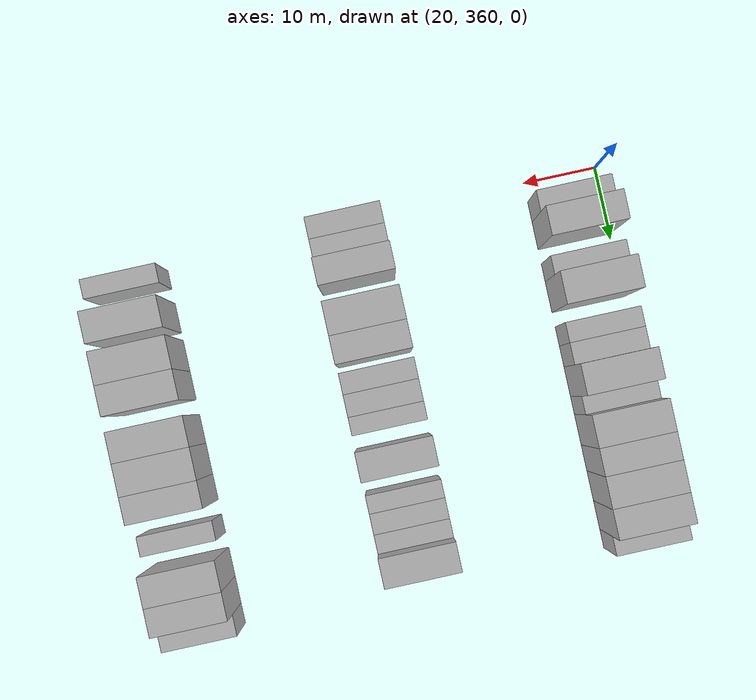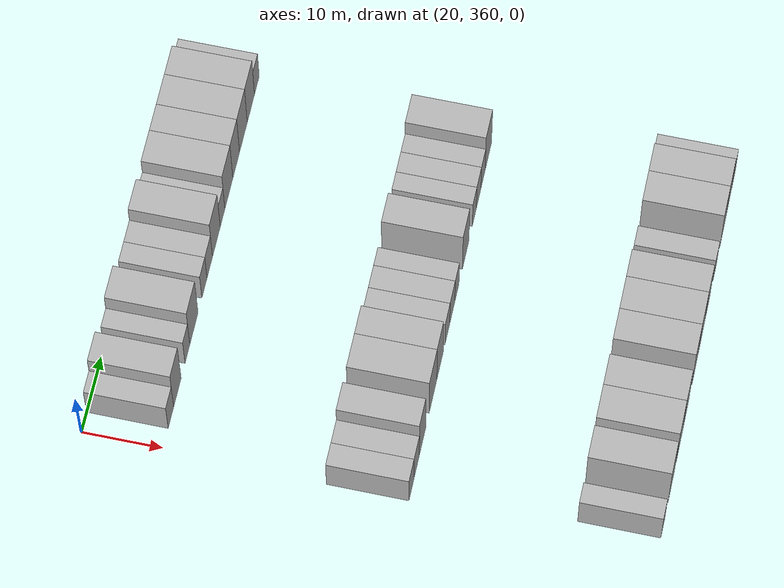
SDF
<sdf version="1.6">
 <world name="default">
  <model name="building_209">
   <static>1</static>
   <pose>25.0000 364.0483 0 0.000000 0.000000 0.000000</pose>
   <link name="link">
    <pose>0 0 3.00 0 0 0</pose>
    <collision name="collision"><geometry><box><size>10.0000 2.8384 6.0000</size></box></geometry></collision>
    <visual name="visual">
     <cast_shadows>0</cast_shadows>
     <geometry><box><size>10.0000 2.8384 6.0000</size></box></geometry>
     <material>
      <script>
       <uri>model://HANNAS_wall/materials/scripts</uri>
       <uri>model://HANNAS_wall/materials/textures</uri>
       <name>vrc/HANNAS_wall</name>
      </script>
     </material>
    </visual>
   </link>
  </model>
  <model name="building_210">
   <static>1</static>
   <pose>25.0000 367.3713 0 0.000000 0.000000 0.000000</pose>
   <link name="link">
    <pose>0 0 4.50 0 0 0</pose>
    <collision name="collision"><geometry><box><size>10.0000 3.8077 9.0000</size></box></geometry></collision>
    <visual name="visual">
     <cast_shadows>0</cast_shadows>
     <geometry><box><size>10.0000 3.8077 9.0000</size></box></geometry>
     <material>
      <script>
       <uri>model://HANNAS_wall/materials/scripts</uri>
       <uri>model://HANNAS_wall/materials/textures</uri>
       <name>vrc/HANNAS_wall</name>
      </script>
     </material>
    </visual>
   </link>
  </model>
  <model name="building_211">
   <static>1</static>
   <pose>25.0000 372.5318 0 0.000000 0.000000 0.000000</pose>
   <link name="link">
    <pose>0 0 3.00 0 0 0</pose>
    <collision name="collision"><geometry><box><size>10.0000 2.5133 6.0000</size></box></geometry></collision>
    <visual name="visual">
     <cast_shadows>0</cast_shadows>
     <geometry><box><size>10.0000 2.5133 6.0000</size></box></geometry>
     <material>
      <script>
       <uri>model://HANNAS_wall/materials/scripts</uri>
       <uri>model://HANNAS_wall/materials/textures</uri>
       <name>vrc/HANNAS_wall</name>
      </script>
     </material>
    </visual>
   </link>
  </model>
  <model name="building_212">
   <static>1</static>
   <pose>25.0000 375.9277 0 0.000000 0.000000 0.000000</pose>
   <link name="link">
    <pose>0 0 4.50 0 0 0</pose>
    <collision name="collision"><geometry><box><size>10.0000 4.2786 9.0000</size></box></geometry></collision>
    <visual name="visual">
     <cast_shadows>0</cast_shadows>
     <geometry><box><size>10.0000 4.2786 9.0000</size></box></geometry>
     <material>
      <script>
       <uri>model://HANNAS_wall/materials/scripts</uri>
       <uri>model://HANNAS_wall/materials/textures</uri>
       <name>vrc/HANNAS_wall</name>
      </script>
     </material>
    </visual>
   </link>
  </model>
  <model name="building_213">
   <static>1</static>
   <pose>25.0000 381.4130 0 0.000000 0.000000 0.000000</pose>
   <link name="link">
    <pose>0 0 3.00 0 0 0</pose>
    <collision name="collision"><geometry><box><size>10.0000 2.6919 6.0000</size></box></geometry></collision>
    <visual name="visual">
     <cast_shadows>0</cast_shadows>
     <geometry><box><size>10.0000 2.6919 6.0000</size></box></geometry>
     <material>
      <script>
       <uri>model://HANNAS_wall/materials/scripts</uri>
       <uri>model://HANNAS_wall/materials/textures</uri>
       <name>vrc/HANNAS_wall</name>
      </script>
     </material>
    </visual>
   </link>
  </model>
  <model name="building_214">
   <static>1</static>
   <pose>25.0000 384.2141 0 0.000000 0.000000 0.000000</pose>
   <link name="link">
    <pose>0 0 3.00 0 0 0</pose>
    <collision name="collision"><geometry><box><size>10.0000 2.9104 6.0000</size></box></geometry></collision>
    <visual name="visual">
     <cast_shadows>0</cast_shadows>
     <geometry><box><size>10.0000 2.9104 6.0000</size></box></geometry>
     <material>
      <script>
       <uri>model://HANNAS_wall/materials/scripts</uri>
       <uri>model://HANNAS_wall/materials/textures</uri>
       <name>vrc/HANNAS_wall</name>
      </script>
     </material>
    </visual>
   </link>
  </model>
  <model name="building_215">
   <static>1</static>
   <pose>25.0000 387.7266 0 0.000000 0.000000 0.000000</pose>
   <link name="link">
    <pose>0 0 4.50 0 0 0</pose>
    <collision name="collision"><geometry><box><size>10.0000 4.1146 9.0000</size></box></geometry></collision>
    <visual name="visual">
     <cast_shadows>0</cast_shadows>
     <geometry><box><size>10.0000 4.1146 9.0000</size></box></geometry>
     <material>
      <script>
       <uri>model://HANNAS_wall/materials/scripts</uri>
       <uri>model://HANNAS_wall/materials/textures</uri>
       <name>vrc/HANNAS_wall</name>
      </script>
     </material>
    </visual>
   </link>
  </model>
  <model name="building_216">
   <static>1</static>
   <pose>25.0000 391.0160 0 0.000000 0.000000 0.000000</pose>
   <link name="link">
    <pose>0 0 3.00 0 0 0</pose>
    <collision name="collision"><geometry><box><size>10.0000 2.4641 6.0000</size></box></geometry></collision>
    <visual name="visual">
     <cast_shadows>0</cast_shadows>
     <geometry><box><size>10.0000 2.4641 6.0000</size></box></geometry>
     <material>
      <script>
       <uri>model://HANNAS_wall/materials/scripts</uri>
       <uri>model://HANNAS_wall/materials/textures</uri>
       <name>vrc/HANNAS_wall</name>
      </script>
     </material>
    </visual>
   </link>
  </model>
  <model name="building_217">
   <static>1</static>
   <pose>25.0000 394.3928 0 0.000000 0.000000 0.000000</pose>
   <link name="link">
    <pose>0 0 4.50 0 0 0</pose>
    <collision name="collision"><geometry><box><size>10.0000 4.2895 9.0000</size></box></geometry></collision>
    <visual name="visual">
     <cast_shadows>0</cast_shadows>
     <geometry><box><size>10.0000 4.2895 9.0000</size></box></geometry>
     <material>
      <script>
       <uri>model://HANNAS_wall/materials/scripts</uri>
       <uri>model://HANNAS_wall/materials/textures</uri>
       <name>vrc/HANNAS_wall</name>
      </script>
     </material>
    </visual>
   </link>
  </model>
  <model name="building_218">
   <static>1</static>
   <pose>25.0000 398.3449 0 0.000000 0.000000 0.000000</pose>
   <link name="link">
    <pose>0 0 4.50 0 0 0</pose>
    <collision name="collision"><geometry><box><size>10.0000 3.6149 9.0000</size></box></geometry></collision>
    <visual name="visual">
     <cast_shadows>0</cast_shadows>
     <geometry><box><size>10.0000 3.6149 9.0000</size></box></geometry>
     <material>
      <script>
       <uri>model://HANNAS_wall/materials/scripts</uri>
       <uri>model://HANNAS_wall/materials/textures</uri>
       <name>vrc/HANNAS_wall</name>
      </script>
     </material>
    </visual>
   </link>
  </model>
  <model name="building_219">
   <static>1</static>
   <pose>25.0000 402.2416 0 0.000000 0.000000 0.000000</pose>
   <link name="link">
    <pose>0 0 4.50 0 0 0</pose>
    <collision name="collision"><geometry><box><size>10.0000 4.1786 9.0000</size></box></geometry></collision>
    <visual name="visual">
     <cast_shadows>0</cast_shadows>
     <geometry><box><size>10.0000 4.1786 9.0000</size></box></geometry>
     <material>
      <script>
       <uri>model://HANNAS_wall/materials/scripts</uri>
       <uri>model://HANNAS_wall/materials/textures</uri>
       <name>vrc/HANNAS_wall</name>
      </script>
     </material>
    </visual>
   </link>
  </model>
  <model name="building_220">
   <static>1</static>
   <pose>25.0000 406.3183 0 0.000000 0.000000 0.000000</pose>
   <link name="link">
    <pose>0 0 4.50 0 0 0</pose>
    <collision name="collision"><geometry><box><size>10.0000 3.9747 9.0000</size></box></geometry></collision>
    <visual name="visual">
     <cast_shadows>0</cast_shadows>
     <geometry><box><size>10.0000 3.9747 9.0000</size></box></geometry>
     <material>
      <script>
       <uri>model://HANNAS_wall/materials/scripts</uri>
       <uri>model://HANNAS_wall/materials/textures</uri>
       <name>vrc/HANNAS_wall</name>
      </script>
     </material>
    </visual>
   </link>
  </model>
  <model name="building_221">
   <static>1</static>
   <pose>25.0000 409.6116 0 0.000000 0.000000 0.000000</pose>
   <link name="link">
    <pose>0 0 3.00 0 0 0</pose>
    <collision name="collision"><geometry><box><size>10.0000 2.6121 6.0000</size></box></geometry></collision>
    <visual name="visual">
     <cast_shadows>0</cast_shadows>
     <geometry><box><size>10.0000 2.6121 6.0000</size></box></geometry>
     <material>
      <script>
       <uri>model://HANNAS_wall/materials/scripts</uri>
       <uri>model://HANNAS_wall/materials/textures</uri>
       <name>vrc/HANNAS_wall</name>
      </script>
     </material>
    </visual>
   </link>
  </model>
  <model name="building_428">
   <static>1</static>
   <pose>55.0000 361.0301 0 0.000000 0.000000 0.000000</pose>
   <link name="link">
    <pose>0 0 3.00 0 0 0</pose>
    <collision name="collision"><geometry><box><size>10.0000 2.9078 6.0000</size></box></geometry></collision>
    <visual name="visual">
     <cast_shadows>0</cast_shadows>
     <geometry><box><size>10.0000 2.9078 6.0000</size></box></geometry>
     <material>
      <script>
       <uri>model://HANNAS_wall/materials/scripts</uri>
       <uri>model://HANNAS_wall/materials/textures</uri>
       <name>vrc/HANNAS_wall</name>
      </script>
     </material>
    </visual>
   </link>
  </model>
  <model name="building_429">
   <static>1</static>
   <pose>55.0000 363.9739 0 0.000000 0.000000 0.000000</pose>
   <link name="link">
    <pose>0 0 3.00 0 0 0</pose>
    <collision name="collision"><geometry><box><size>10.0000 2.9797 6.0000</size></box></geometry></collision>
    <visual name="visual">
     <cast_shadows>0</cast_shadows>
     <geometry><box><size>10.0000 2.9797 6.0000</size></box></geometry>
     <material>
      <script>
       <uri>model://HANNAS_wall/materials/scripts</uri>
       <uri>model://HANNAS_wall/materials/textures</uri>
       <name>vrc/HANNAS_wall</name>
      </script>
     </material>
    </visual>
   </link>
  </model>
  <model name="building_430">
   <static>1</static>
   <pose>55.0000 367.2652 0 0.000000 0.000000 0.000000</pose>
   <link name="link">
    <pose>0 0 4.50 0 0 0</pose>
    <collision name="collision"><geometry><box><size>10.0000 3.6028 9.0000</size></box></geometry></collision>
    <visual name="visual">
     <cast_shadows>0</cast_shadows>
     <geometry><box><size>10.0000 3.6028 9.0000</size></box></geometry>
     <material>
      <script>
       <uri>model://HANNAS_wall/materials/scripts</uri>
       <uri>model://HANNAS_wall/materials/textures</uri>
       <name>vrc/HANNAS_wall</name>
      </script>
     </material>
    </visual>
   </link>
  </model>
  <model name="building_431">
   <static>1</static>
   <pose>55.0000 373.2834 0 0.000000 0.000000 0.000000</pose>
   <link name="link">
    <pose>0 0 4.50 0 0 0</pose>
    <collision name="collision"><geometry><box><size>10.0000 4.4337 9.0000</size></box></geometry></collision>
    <visual name="visual">
     <cast_shadows>0</cast_shadows>
     <geometry><box><size>10.0000 4.4337 9.0000</size></box></geometry>
     <material>
      <script>
       <uri>model://HANNAS_wall/materials/scripts</uri>
       <uri>model://HANNAS_wall/materials/textures</uri>
       <name>vrc/HANNAS_wall</name>
      </script>
     </material>
    </visual>
   </link>
  </model>
  <model name="building_432">
   <static>1</static>
   <pose>55.0000 377.3380 0 0.000000 0.000000 0.000000</pose>
   <link name="link">
    <pose>0 0 4.50 0 0 0</pose>
    <collision name="collision"><geometry><box><size>10.0000 3.6753 9.0000</size></box></geometry></collision>
    <visual name="visual">
     <cast_shadows>0</cast_shadows>
     <geometry><box><size>10.0000 3.6753 9.0000</size></box></geometry>
     <material>
      <script>
       <uri>model://HANNAS_wall/materials/scripts</uri>
       <uri>model://HANNAS_wall/materials/textures</uri>
       <name>vrc/HANNAS_wall</name>
      </script>
     </material>
    </visual>
   </link>
  </model>
  <model name="building_433">
   <static>1</static>
   <pose>55.0000 381.5956 0 0.000000 0.000000 0.000000</pose>
   <link name="link">
    <pose>0 0 3.00 0 0 0</pose>
    <collision name="collision"><geometry><box><size>10.0000 2.8399 6.0000</size></box></geometry></collision>
    <visual name="visual">
     <cast_shadows>0</cast_shadows>
     <geometry><box><size>10.0000 2.8399 6.0000</size></box></geometry>
     <material>
      <script>
       <uri>model://HANNAS_wall/materials/scripts</uri>
       <uri>model://HANNAS_wall/materials/textures</uri>
       <name>vrc/HANNAS_wall</name>
      </script>
     </material>
    </visual>
   </link>
  </model>
  <model name="building_434">
   <static>1</static>
   <pose>55.0000 384.5088 0 0.000000 0.000000 0.000000</pose>
   <link name="link">
    <pose>0 0 3.00 0 0 0</pose>
    <collision name="collision"><geometry><box><size>10.0000 2.9866 6.0000</size></box></geometry></collision>
    <visual name="visual">
     <cast_shadows>0</cast_shadows>
     <geometry><box><size>10.0000 2.9866 6.0000</size></box></geometry>
     <material>
      <script>
       <uri>model://HANNAS_wall/materials/scripts</uri>
       <uri>model://HANNAS_wall/materials/textures</uri>
       <name>vrc/HANNAS_wall</name>
      </script>
     </material>
    </visual>
   </link>
  </model>
  <model name="building_435">
   <static>1</static>
   <pose>55.0000 387.2165 0 0.000000 0.000000 0.000000</pose>
   <link name="link">
    <pose>0 0 3.00 0 0 0</pose>
    <collision name="collision"><geometry><box><size>10.0000 2.4286 6.0000</size></box></geometry></collision>
    <visual name="visual">
     <cast_shadows>0</cast_shadows>
     <geometry><box><size>10.0000 2.4286 6.0000</size></box></geometry>
     <material>
      <script>
       <uri>model://HANNAS_wall/materials/scripts</uri>
       <uri>model://HANNAS_wall/materials/textures</uri>
       <name>vrc/HANNAS_wall</name>
      </script>
     </material>
    </visual>
   </link>
  </model>
  <model name="building_436">
   <static>1</static>
   <pose>55.0000 392.3767 0 0.000000 0.000000 0.000000</pose>
   <link name="link">
    <pose>0 0 4.50 0 0 0</pose>
    <collision name="collision"><geometry><box><size>10.0000 3.8918 9.0000</size></box></geometry></collision>
    <visual name="visual">
     <cast_shadows>0</cast_shadows>
     <geometry><box><size>10.0000 3.8918 9.0000</size></box></geometry>
     <material>
      <script>
       <uri>model://HANNAS_wall/materials/scripts</uri>
       <uri>model://HANNAS_wall/materials/textures</uri>
       <name>vrc/HANNAS_wall</name>
      </script>
     </material>
    </visual>
   </link>
  </model>
  <model name="building_437">
   <static>1</static>
   <pose>55.0000 397.5362 0 0.000000 0.000000 0.000000</pose>
   <link name="link">
    <pose>0 0 3.00 0 0 0</pose>
    <collision name="collision"><geometry><box><size>10.0000 2.4274 6.0000</size></box></geometry></collision>
    <visual name="visual">
     <cast_shadows>0</cast_shadows>
     <geometry><box><size>10.0000 2.4274 6.0000</size></box></geometry>
     <material>
      <script>
       <uri>model://HANNAS_wall/materials/scripts</uri>
       <uri>model://HANNAS_wall/materials/textures</uri>
       <name>vrc/HANNAS_wall</name>
      </script>
     </material>
    </visual>
   </link>
  </model>
  <model name="building_438">
   <static>1</static>
   <pose>55.0000 400.1274 0 0.000000 0.000000 0.000000</pose>
   <link name="link">
    <pose>0 0 3.00 0 0 0</pose>
    <collision name="collision"><geometry><box><size>10.0000 2.7550 6.0000</size></box></geometry></collision>
    <visual name="visual">
     <cast_shadows>0</cast_shadows>
     <geometry><box><size>10.0000 2.7550 6.0000</size></box></geometry>
     <material>
      <script>
       <uri>model://HANNAS_wall/materials/scripts</uri>
       <uri>model://HANNAS_wall/materials/textures</uri>
       <name>vrc/HANNAS_wall</name>
      </script>
     </material>
    </visual>
   </link>
  </model>
  <model name="building_439">
   <static>1</static>
   <pose>55.0000 402.7601 0 0.000000 0.000000 0.000000</pose>
   <link name="link">
    <pose>0 0 3.00 0 0 0</pose>
    <collision name="collision"><geometry><box><size>10.0000 2.5104 6.0000</size></box></geometry></collision>
    <visual name="visual">
     <cast_shadows>0</cast_shadows>
     <geometry><box><size>10.0000 2.5104 6.0000</size></box></geometry>
     <material>
      <script>
       <uri>model://HANNAS_wall/materials/scripts</uri>
       <uri>model://HANNAS_wall/materials/textures</uri>
       <name>vrc/HANNAS_wall</name>
      </script>
     </material>
    </visual>
   </link>
  </model>
  <model name="building_440">
   <static>1</static>
   <pose>55.0000 405.9724 0 0.000000 0.000000 0.000000</pose>
   <link name="link">
    <pose>0 0 4.50 0 0 0</pose>
    <collision name="collision"><geometry><box><size>10.0000 3.9143 9.0000</size></box></geometry></collision>
    <visual name="visual">
     <cast_shadows>0</cast_shadows>
     <geometry><box><size>10.0000 3.9143 9.0000</size></box></geometry>
     <material>
      <script>
       <uri>model://HANNAS_wall/materials/scripts</uri>
       <uri>model://HANNAS_wall/materials/textures</uri>
       <name>vrc/HANNAS_wall</name>
      </script>
     </material>
    </visual>
   </link>
  </model>
  <model name="building_650">
   <static>1</static>
   <pose>85.0000 362.4748 0 0.000000 0.000000 0.000000</pose>
   <link name="link">
    <pose>0 0 3.00 0 0 0</pose>
    <collision name="collision"><geometry><box><size>10.0000 2.5804 6.0000</size></box></geometry></collision>
    <visual name="visual">
     <cast_shadows>0</cast_shadows>
     <geometry><box><size>10.0000 2.5804 6.0000</size></box></geometry>
     <material>
      <script>
       <uri>model://HANNAS_wall/materials/scripts</uri>
       <uri>model://HANNAS_wall/materials/textures</uri>
       <name>vrc/HANNAS_wall</name>
      </script>
     </material>
    </visual>
   </link>
  </model>
  <model name="building_651">
   <static>1</static>
   <pose>85.0000 367.8353 0 0.000000 0.000000 0.000000</pose>
   <link name="link">
    <pose>0 0 4.50 0 0 0</pose>
    <collision name="collision"><geometry><box><size>10.0000 4.1405 9.0000</size></box></geometry></collision>
    <visual name="visual">
     <cast_shadows>0</cast_shadows>
     <geometry><box><size>10.0000 4.1405 9.0000</size></box></geometry>
     <material>
      <script>
       <uri>model://HANNAS_wall/materials/scripts</uri>
       <uri>model://HANNAS_wall/materials/textures</uri>
       <name>vrc/HANNAS_wall</name>
      </script>
     </material>
    </visual>
   </link>
  </model>
  <model name="building_652">
   <static>1</static>
   <pose>85.0000 373.0830 0 0.000000 0.000000 0.000000</pose>
   <link name="link">
    <pose>0 0 4.50 0 0 0</pose>
    <collision name="collision"><geometry><box><size>10.0000 4.3550 9.0000</size></box></geometry></collision>
    <visual name="visual">
     <cast_shadows>0</cast_shadows>
     <geometry><box><size>10.0000 4.3550 9.0000</size></box></geometry>
     <material>
      <script>
       <uri>model://HANNAS_wall/materials/scripts</uri>
       <uri>model://HANNAS_wall/materials/textures</uri>
       <name>vrc/HANNAS_wall</name>
      </script>
     </material>
    </visual>
   </link>
  </model>
  <model name="building_653">
   <static>1</static>
   <pose>85.0000 377.2454 0 0.000000 0.000000 0.000000</pose>
   <link name="link">
    <pose>0 0 4.50 0 0 0</pose>
    <collision name="collision"><geometry><box><size>10.0000 3.9697 9.0000</size></box></geometry></collision>
    <visual name="visual">
     <cast_shadows>0</cast_shadows>
     <geometry><box><size>10.0000 3.9697 9.0000</size></box></geometry>
     <material>
      <script>
       <uri>model://HANNAS_wall/materials/scripts</uri>
       <uri>model://HANNAS_wall/materials/textures</uri>
       <name>vrc/HANNAS_wall</name>
      </script>
     </material>
    </visual>
   </link>
  </model>
  <model name="building_654">
   <static>1</static>
   <pose>85.0000 383.2524 0 0.000000 0.000000 0.000000</pose>
   <link name="link">
    <pose>0 0 4.50 0 0 0</pose>
    <collision name="collision"><geometry><box><size>10.0000 4.0443 9.0000</size></box></geometry></collision>
    <visual name="visual">
     <cast_shadows>0</cast_shadows>
     <geometry><box><size>10.0000 4.0443 9.0000</size></box></geometry>
     <material>
      <script>
       <uri>model://HANNAS_wall/materials/scripts</uri>
       <uri>model://HANNAS_wall/materials/textures</uri>
       <name>vrc/HANNAS_wall</name>
      </script>
     </material>
    </visual>
   </link>
  </model>
  <model name="building_655">
   <static>1</static>
   <pose>85.0000 387.4145 0 0.000000 0.000000 0.000000</pose>
   <link name="link">
    <pose>0 0 4.50 0 0 0</pose>
    <collision name="collision"><geometry><box><size>10.0000 4.2799 9.0000</size></box></geometry></collision>
    <visual name="visual">
     <cast_shadows>0</cast_shadows>
     <geometry><box><size>10.0000 4.2799 9.0000</size></box></geometry>
     <material>
      <script>
       <uri>model://HANNAS_wall/materials/scripts</uri>
       <uri>model://HANNAS_wall/materials/textures</uri>
       <name>vrc/HANNAS_wall</name>
      </script>
     </material>
    </visual>
   </link>
  </model>
  <model name="building_656">
   <static>1</static>
   <pose>85.0000 391.3574 0 0.000000 0.000000 0.000000</pose>
   <link name="link">
    <pose>0 0 4.50 0 0 0</pose>
    <collision name="collision"><geometry><box><size>10.0000 3.6059 9.0000</size></box></geometry></collision>
    <visual name="visual">
     <cast_shadows>0</cast_shadows>
     <geometry><box><size>10.0000 3.6059 9.0000</size></box></geometry>
     <material>
      <script>
       <uri>model://HANNAS_wall/materials/scripts</uri>
       <uri>model://HANNAS_wall/materials/textures</uri>
       <name>vrc/HANNAS_wall</name>
      </script>
     </material>
    </visual>
   </link>
  </model>
  <model name="building_657">
   <static>1</static>
   <pose>85.0000 396.4736 0 0.000000 0.000000 0.000000</pose>
   <link name="link">
    <pose>0 0 3.00 0 0 0</pose>
    <collision name="collision"><geometry><box><size>10.0000 2.6267 6.0000</size></box></geometry></collision>
    <visual name="visual">
     <cast_shadows>0</cast_shadows>
     <geometry><box><size>10.0000 2.6267 6.0000</size></box></geometry>
     <material>
      <script>
       <uri>model://HANNAS_wall/materials/scripts</uri>
       <uri>model://HANNAS_wall/materials/textures</uri>
       <name>vrc/HANNAS_wall</name>
      </script>
     </material>
    </visual>
   </link>
  </model>
  <model name="building_658">
   <static>1</static>
   <pose>85.0000 401.8154 0 0.000000 0.000000 0.000000</pose>
   <link name="link">
    <pose>0 0 4.50 0 0 0</pose>
    <collision name="collision"><geometry><box><size>10.0000 4.0569 9.0000</size></box></geometry></collision>
    <visual name="visual">
     <cast_shadows>0</cast_shadows>
     <geometry><box><size>10.0000 4.0569 9.0000</size></box></geometry>
     <material>
      <script>
       <uri>model://HANNAS_wall/materials/scripts</uri>
       <uri>model://HANNAS_wall/materials/textures</uri>
       <name>vrc/HANNAS_wall</name>
      </script>
     </material>
    </visual>
   </link>
  </model>
  <model name="building_659">
   <static>1</static>
   <pose>85.0000 405.7153 0 0.000000 0.000000 0.000000</pose>
   <link name="link">
    <pose>0 0 4.50 0 0 0</pose>
    <collision name="collision"><geometry><box><size>10.0000 3.7428 9.0000</size></box></geometry></collision>
    <visual name="visual">
     <cast_shadows>0</cast_shadows>
     <geometry><box><size>10.0000 3.7428 9.0000</size></box></geometry>
     <material>
      <script>
       <uri>model://HANNAS_wall/materials/scripts</uri>
       <uri>model://HANNAS_wall/materials/textures</uri>
       <name>vrc/HANNAS_wall</name>
      </script>
     </material>
    </visual>
   </link>
  </model>
  <model name="building_660">
   <static>1</static>
   <pose>85.0000 408.9980 0 0.000000 0.000000 0.000000</pose>
   <link name="link">
    <pose>0 0 3.00 0 0 0</pose>
    <collision name="collision"><geometry><box><size>10.0000 2.8225 6.0000</size></box></geometry></collision>
    <visual name="visual">
     <cast_shadows>0</cast_shadows>
     <geometry><box><size>10.0000 2.8225 6.0000</size></box></geometry>
     <material>
      <script>
       <uri>model://HANNAS_wall/materials/scripts</uri>
       <uri>model://HANNAS_wall/materials/textures</uri>
       <name>vrc/HANNAS_wall</name>
      </script>
     </material>
    </visual>
   </link>
  </model>
 </world>
</sdf>
